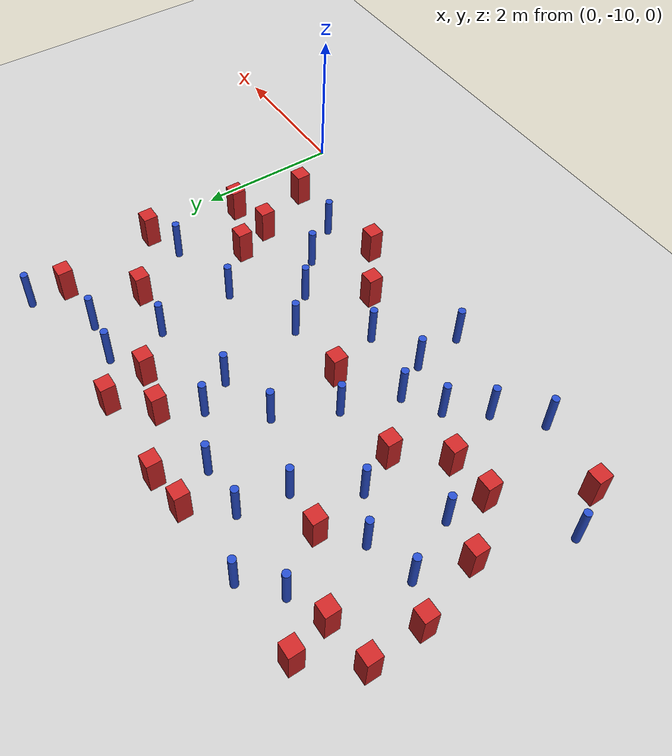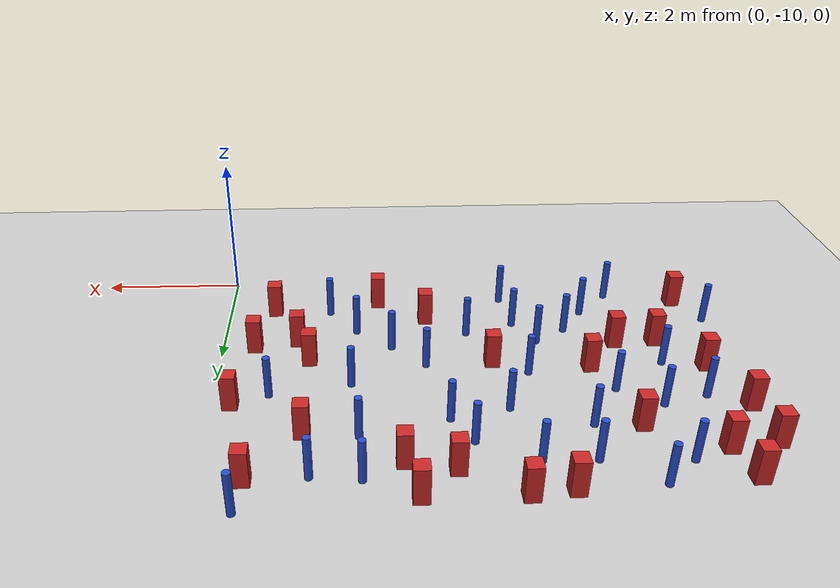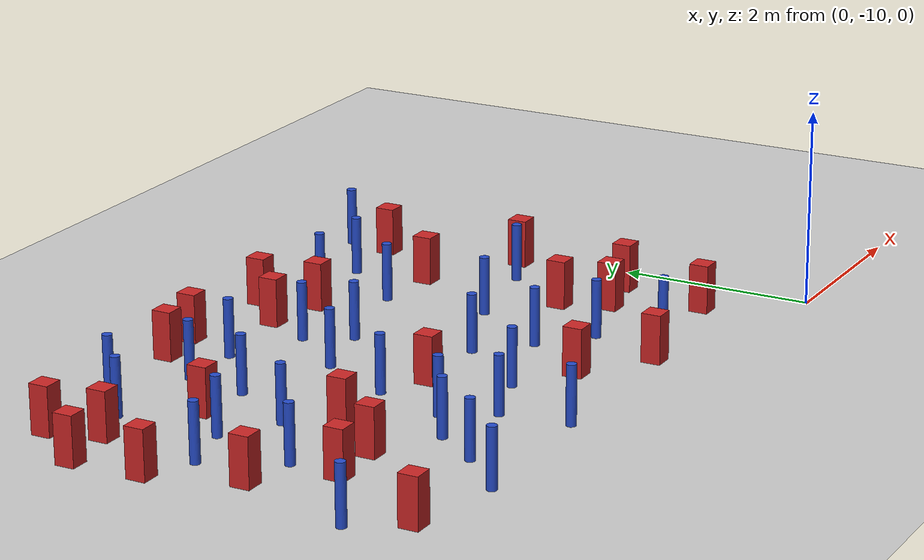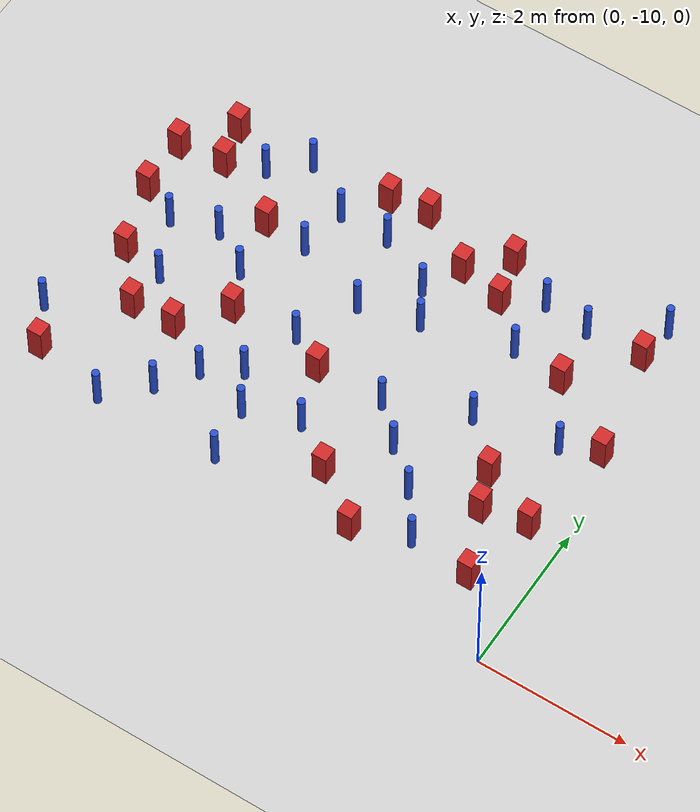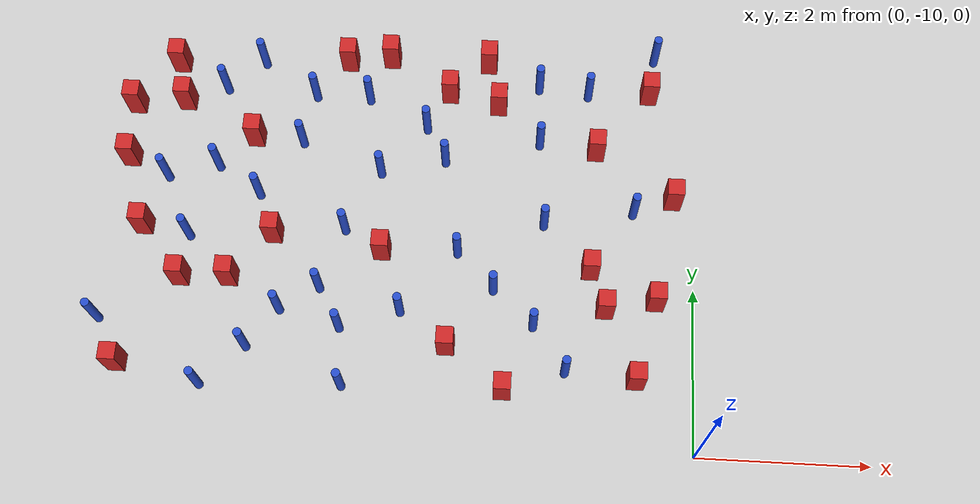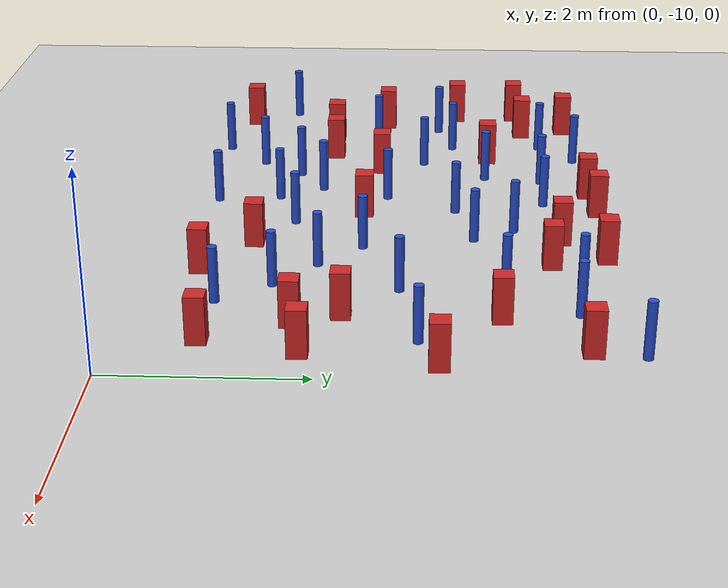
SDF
<sdf version="1.6">
 <world name="default">
  <model name="ground_plane">
   <static>1</static>
   <link name="link">
    <collision name="collision">
     <geometry><plane><normal>0 0 1</normal><size>100 100</size></plane></geometry>
     <surface><friction><ode><mu>100</mu><mu2>50</mu2></ode></friction></surface>
    </collision>
    <visual name="visual">
     <cast_shadows>0</cast_shadows>
     <geometry><plane><normal>0 0 1</normal><size>100 100</size></plane></geometry>
     <material>
      <ambient>1.0 1.0 1.0 1.0</ambient>
      <diffuse>0.8 0.8 0.8 1.0</diffuse>
      <specular>0.01 0.01 0.01 1.000000</specular>
     </material>
    </visual>
   </link>
  </model>
  <model name="square_post_obstacle3">
   <static>true</static>
   <pose>-6.44822498088 -5.28785836614 -4.36207812815e-07 3.75137919937e-06 9.77721102514e-07 2.47381364184e-05</pose>
   <link name="link">
    <pose>0 0 0.25 0 -0 0</pose>
    <inertial>
     <mass>100</mass>
     <inertia>
      <ixx>0.166667</ixx>
      <ixy>0</ixy>
      <ixz>0</ixz>
      <iyy>0.166667</iyy>
      <iyz>0</iyz>
      <izz>0.166667</izz>
     </inertia>
    </inertial>
    <collision name="collision"><geometry><box><size>.2 .2 .5</size></box></geometry></collision>
    <visual name="visual">
     <geometry><box><size>.2 .2 .5</size></box></geometry>
     <material>
      <script><name>Gazebo/Red</name><uri>file://media/materials/scripts/gazebo.material</uri></script>
     </material>
    </visual>
   </link>
  </model>
  <model name="pole_obstacle2">
   <static>true</static>
   <pose>-5.21666784153 -8.9613979253 -3.09024884793e-07 -7.19054271912e-07 -2.1131507513e-07 -1.93935509261e-07</pose>
   <link name="link">
    <pose>0 0 0.3 0 -0 0</pose>
    <inertial>
     <mass>1</mass>
     <inertia><ixx>0.145833</ixx><ixy>0</ixy><ixz>0</ixz><iyy>0.145833</iyy><iyz>0</iyz><izz>0.125</izz></inertia>
    </inertial>
    <collision name="collision">
     <geometry><cylinder><radius>0.05</radius><length>.6</length></cylinder></geometry>
    </collision>
    <visual name="visual">
     <geometry><cylinder><radius>0.05</radius><length>.6</length></cylinder></geometry>
     <material>
      <script><name>Gazebo/Blue</name><uri>file://media/materials/scripts/gazebo.material</uri></script>
     </material>
    </visual>
   </link>
  </model>
  <model name="square_post_obstacle5">
   <static>true</static>
   <pose>-2.57139538991 -5.11353573605 -4.36207812815e-07 3.75137919937e-06 9.77721102514e-07 2.47381364184e-05</pose>
   <link name="link">
    <pose>0 0 0.25 0 -0 0</pose>
    <inertial>
     <mass>100</mass>
     <inertia>
      <ixx>0.166667</ixx>
      <ixy>0</ixy>
      <ixz>0</ixz>
      <iyy>0.166667</iyy>
      <iyz>0</iyz>
      <izz>0.166667</izz>
     </inertia>
    </inertial>
    <collision name="collision"><geometry><box><size>.2 .2 .5</size></box></geometry></collision>
    <visual name="visual">
     <geometry><box><size>.2 .2 .5</size></box></geometry>
     <material>
      <script><name>Gazebo/Red</name><uri>file://media/materials/scripts/gazebo.material</uri></script>
     </material>
    </visual>
   </link>
  </model>
  <model name="pole_obstacle5">
   <static>true</static>
   <pose>-1.49414931302 -9.09169557917 -3.09024884793e-07 -7.19054271912e-07 -2.1131507515e-07 -1.93935509273e-07</pose>
   <link name="link">
    <pose>0 0 0.3 0 -0 0</pose>
    <inertial>
     <mass>1</mass>
     <inertia><ixx>0.145833</ixx><ixy>0</ixy><ixz>0</ixz><iyy>0.145833</iyy><iyz>0</iyz><izz>0.125</izz></inertia>
    </inertial>
    <collision name="collision">
     <geometry><cylinder><radius>0.05</radius><length>.6</length></cylinder></geometry>
    </collision>
    <visual name="visual">
     <geometry><cylinder><radius>0.05</radius><length>.6</length></cylinder></geometry>
     <material>
      <script><name>Gazebo/Blue</name><uri>file://media/materials/scripts/gazebo.material</uri></script>
     </material>
    </visual>
   </link>
  </model>
  <model name="square_post_obstacle24">
   <static>true</static>
   <pose>-6.68287797261 -9.22336050175 -4.36207812815e-07 3.75137919937e-06 9.77721102514e-07 2.47381364184e-05</pose>
   <link name="link">
    <pose>0 0 0.25 0 -0 0</pose>
    <inertial>
     <mass>100</mass>
     <inertia>
      <ixx>0.166667</ixx>
      <ixy>0</ixy>
      <ixz>0</ixz>
      <iyy>0.166667</iyy>
      <iyz>0</iyz>
      <izz>0.166667</izz>
     </inertia>
    </inertial>
    <collision name="collision"><geometry><box><size>.2 .2 .5</size></box></geometry></collision>
    <visual name="visual">
     <geometry><box><size>.2 .2 .5</size></box></geometry>
     <material>
      <script><name>Gazebo/Red</name><uri>file://media/materials/scripts/gazebo.material</uri></script>
     </material>
    </visual>
   </link>
  </model>
  <model name="square_post_obstacle25">
   <static>true</static>
   <pose>-0.45596552697 -8.17920783324 -4.36207812815e-07 3.75137919937e-06 9.77721102514e-07 2.47381364184e-05</pose>
   <link name="link">
    <pose>0 0 0.25 0 -0 0</pose>
    <inertial>
     <mass>100</mass>
     <inertia>
      <ixx>0.166667</ixx>
      <ixy>0</ixy>
      <ixz>0</ixz>
      <iyy>0.166667</iyy>
      <iyz>0</iyz>
      <izz>0.166667</izz>
     </inertia>
    </inertial>
    <collision name="collision"><geometry><box><size>.2 .2 .5</size></box></geometry></collision>
    <visual name="visual">
     <geometry><box><size>.2 .2 .5</size></box></geometry>
     <material>
      <script><name>Gazebo/Red</name><uri>file://media/materials/scripts/gazebo.material</uri></script>
     </material>
    </visual>
   </link>
  </model>
  <model name="pole_obstacle25">
   <static>true</static>
   <pose>-4.80439455899 -6.31971466745 -3.09024884793e-07 -7.19054271911e-07 -2.1131507516e-07 -1.93935509277e-07</pose>
   <link name="link">
    <pose>0 0 0.3 0 -0 0</pose>
    <inertial>
     <mass>1</mass>
     <inertia><ixx>0.145833</ixx><ixy>0</ixy><ixz>0</ixz><iyy>0.145833</iyy><iyz>0</iyz><izz>0.125</izz></inertia>
    </inertial>
    <collision name="collision">
     <geometry><cylinder><radius>0.05</radius><length>.6</length></cylinder></geometry>
    </collision>
    <visual name="visual">
     <geometry><cylinder><radius>0.05</radius><length>.6</length></cylinder></geometry>
     <material>
      <script><name>Gazebo/Blue</name><uri>file://media/materials/scripts/gazebo.material</uri></script>
     </material>
    </visual>
   </link>
  </model>
  <model name="pole_obstacle29">
   <static>true</static>
   <pose>-2.36857329351 -8.12577683566 -3.09024884848e-07 -7.19054271902e-07 -2.11315075199e-07 -1.93935509286e-07</pose>
   <link name="link">
    <pose>0 0 0.3 0 -0 0</pose>
    <inertial>
     <mass>1</mass>
     <inertia><ixx>0.145833</ixx><ixy>0</ixy><ixz>0</ixz><iyy>0.145833</iyy><iyz>0</iyz><izz>0.125</izz></inertia>
    </inertial>
    <collision name="collision">
     <geometry><cylinder><radius>0.05</radius><length>.6</length></cylinder></geometry>
    </collision>
    <visual name="visual">
     <geometry><cylinder><radius>0.05</radius><length>.6</length></cylinder></geometry>
     <material>
      <script><name>Gazebo/Blue</name><uri>file://media/materials/scripts/gazebo.material</uri></script>
     </material>
    </visual>
   </link>
  </model>
  <model name="square_post_obstacle37">
   <static>true</static>
   <pose>-2.20519600149 -9.33887503852 -4.36207812815e-07 3.75137919937e-06 9.77721102514e-07 2.47381364184e-05</pose>
   <link name="link">
    <pose>0 0 0.25 0 -0 0</pose>
    <inertial>
     <mass>100</mass>
     <inertia>
      <ixx>0.166667</ixx>
      <ixy>0</ixy>
      <ixz>0</ixz>
      <iyy>0.166667</iyy>
      <iyz>0</iyz>
      <izz>0.166667</izz>
     </inertia>
    </inertial>
    <collision name="collision"><geometry><box><size>.2 .2 .5</size></box></geometry></collision>
    <visual name="visual">
     <geometry><box><size>.2 .2 .5</size></box></geometry>
     <material>
      <script><name>Gazebo/Red</name><uri>file://media/materials/scripts/gazebo.material</uri></script>
     </material>
    </visual>
   </link>
  </model>
  <model name="square_post_obstacle43">
   <static>true</static>
   <pose>-0.557182635636 -5.45243389409 -4.36207812815e-07 3.75137919937e-06 9.77721102514e-07 2.47381364184e-05</pose>
   <link name="link">
    <pose>0 0 0.25 0 -0 0</pose>
    <inertial>
     <mass>100</mass>
     <inertia>
      <ixx>0.166667</ixx>
      <ixy>0</ixy>
      <ixz>0</ixz>
      <iyy>0.166667</iyy>
      <iyz>0</iyz>
      <izz>0.166667</izz>
     </inertia>
    </inertial>
    <collision name="collision"><geometry><box><size>.2 .2 .5</size></box></geometry></collision>
    <visual name="visual">
     <geometry><box><size>.2 .2 .5</size></box></geometry>
     <material>
      <script><name>Gazebo/Red</name><uri>file://media/materials/scripts/gazebo.material</uri></script>
     </material>
    </visual>
   </link>
  </model>
  <model name="square_post_obstacle45">
   <static>true</static>
   <pose>-5.39107556689 -6.27581133123 -4.36207812815e-07 3.75137919937e-06 9.77721102514e-07 2.47381364184e-05</pose>
   <link name="link">
    <pose>0 0 0.25 0 -0 0</pose>
    <inertial>
     <mass>100</mass>
     <inertia>
      <ixx>0.166667</ixx>
      <ixy>0</ixy>
      <ixz>0</ixz>
      <iyy>0.166667</iyy>
      <iyz>0</iyz>
      <izz>0.166667</izz>
     </inertia>
    </inertial>
    <collision name="collision"><geometry><box><size>.2 .2 .5</size></box></geometry></collision>
    <visual name="visual">
     <geometry><box><size>.2 .2 .5</size></box></geometry>
     <material>
      <script><name>Gazebo/Red</name><uri>file://media/materials/scripts/gazebo.material</uri></script>
     </material>
    </visual>
   </link>
  </model>
  <model name="square_post_obstacle48">
   <static>true</static>
   <pose>-1.04766358449 -8.30366901442 -4.36207812815e-07 3.75137919937e-06 9.77721102514e-07 2.47381364184e-05</pose>
   <link name="link">
    <pose>0 0 0.25 0 -0 0</pose>
    <inertial>
     <mass>100</mass>
     <inertia>
      <ixx>0.166667</ixx>
      <ixy>0</ixy>
      <ixz>0</ixz>
      <iyy>0.166667</iyy>
      <iyz>0</iyz>
      <izz>0.166667</izz>
     </inertia>
    </inertial>
    <collision name="collision"><geometry><box><size>.2 .2 .5</size></box></geometry></collision>
    <visual name="visual">
     <geometry><box><size>.2 .2 .5</size></box></geometry>
     <material>
      <script><name>Gazebo/Red</name><uri>file://media/materials/scripts/gazebo.material</uri></script>
     </material>
    </visual>
   </link>
  </model>
  <model name="square_post_obstacle61">
   <static>true</static>
   <pose>-0.256074514764 -6.87260186018 -4.36207812815e-07 3.75137919937e-06 9.77721102514e-07 2.47381364184e-05</pose>
   <link name="link">
    <pose>0 0 0.25 0 -0 0</pose>
    <inertial>
     <mass>100</mass>
     <inertia>
      <ixx>0.166667</ixx>
      <ixy>0</ixy>
      <ixz>0</ixz>
      <iyy>0.166667</iyy>
      <iyz>0</iyz>
      <izz>0.166667</izz>
     </inertia>
    </inertial>
    <collision name="collision"><geometry><box><size>.2 .2 .5</size></box></geometry></collision>
    <visual name="visual">
     <geometry><box><size>.2 .2 .5</size></box></geometry>
     <material>
      <script><name>Gazebo/Red</name><uri>file://media/materials/scripts/gazebo.material</uri></script>
     </material>
    </visual>
   </link>
  </model>
  <model name="square_post_obstacle64">
   <static>true</static>
   <pose>-6.08425042094 -8.140523649 -4.36207812815e-07 3.75137919937e-06 9.77721102514e-07 2.47381364184e-05</pose>
   <link name="link">
    <pose>0 0 0.25 0 -0 0</pose>
    <inertial>
     <mass>100</mass>
     <inertia>
      <ixx>0.166667</ixx>
      <ixy>0</ixy>
      <ixz>0</ixz>
      <iyy>0.166667</iyy>
      <iyz>0</iyz>
      <izz>0.166667</izz>
     </inertia>
    </inertial>
    <collision name="collision"><geometry><box><size>.2 .2 .5</size></box></geometry></collision>
    <visual name="visual">
     <geometry><box><size>.2 .2 .5</size></box></geometry>
     <material>
      <script><name>Gazebo/Red</name><uri>file://media/materials/scripts/gazebo.material</uri></script>
     </material>
    </visual>
   </link>
  </model>
  <model name="square_post_obstacle67">
   <static>true</static>
   <pose>-6.92382978168 -5.8930646506 -4.36207812815e-07 3.75137919937e-06 9.77721102514e-07 2.47381364184e-05</pose>
   <link name="link">
    <pose>0 0 0.25 0 -0 0</pose>
    <inertial>
     <mass>100</mass>
     <inertia>
      <ixx>0.166667</ixx>
      <ixy>0</ixy>
      <ixz>0</ixz>
      <iyy>0.166667</iyy>
      <iyz>0</iyz>
      <izz>0.166667</izz>
     </inertia>
    </inertial>
    <collision name="collision"><geometry><box><size>.2 .2 .5</size></box></geometry></collision>
    <visual name="visual">
     <geometry><box><size>.2 .2 .5</size></box></geometry>
     <material>
      <script><name>Gazebo/Red</name><uri>file://media/materials/scripts/gazebo.material</uri></script>
     </material>
    </visual>
   </link>
  </model>
  <model name="square_post_obstacle74">
   <static>true</static>
   <pose>-1.19860468981 -6.26405634627 -4.36207812815e-07 3.75137919937e-06 9.77721102514e-07 2.47381364184e-05</pose>
   <link name="link">
    <pose>0 0 0.25 0 -0 0</pose>
    <inertial>
     <mass>100</mass>
     <inertia>
      <ixx>0.166667</ixx>
      <ixy>0</ixy>
      <ixz>0</ixz>
      <iyy>0.166667</iyy>
      <iyz>0</iyz>
      <izz>0.166667</izz>
     </inertia>
    </inertial>
    <collision name="collision"><geometry><box><size>.2 .2 .5</size></box></geometry></collision>
    <visual name="visual">
     <geometry><box><size>.2 .2 .5</size></box></geometry>
     <material>
      <script><name>Gazebo/Red</name><uri>file://media/materials/scripts/gazebo.material</uri></script>
     </material>
    </visual>
   </link>
  </model>
  <model name="pole_obstacle71">
   <static>true</static>
   <pose>-3.45153604325 -8.44848197572 -3.09024884793e-07 -7.19054271912e-07 -2.11315075137e-07 -1.93935509267e-07</pose>
   <link name="link">
    <pose>0 0 0.3 0 -0 0</pose>
    <inertial>
     <mass>1</mass>
     <inertia><ixx>0.145833</ixx><ixy>0</ixy><ixz>0</ixz><iyy>0.145833</iyy><iyz>0</iyz><izz>0.125</izz></inertia>
    </inertial>
    <collision name="collision">
     <geometry><cylinder><radius>0.05</radius><length>.6</length></cylinder></geometry>
    </collision>
    <visual name="visual">
     <geometry><cylinder><radius>0.05</radius><length>.6</length></cylinder></geometry>
     <material>
      <script><name>Gazebo/Blue</name><uri>file://media/materials/scripts/gazebo.material</uri></script>
     </material>
    </visual>
   </link>
  </model>
  <model name="pole_obstacle74">
   <static>true</static>
   <pose>-1.80178495388 -7.26870234305 -3.09024884793e-07 -7.19054271912e-07 -2.11315075134e-07 -1.93935509265e-07</pose>
   <link name="link">
    <pose>0 0 0.3 0 -0 0</pose>
    <inertial>
     <mass>1</mass>
     <inertia><ixx>0.145833</ixx><ixy>0</ixy><ixz>0</ixz><iyy>0.145833</iyy><iyz>0</iyz><izz>0.125</izz></inertia>
    </inertial>
    <collision name="collision">
     <geometry><cylinder><radius>0.05</radius><length>.6</length></cylinder></geometry>
    </collision>
    <visual name="visual">
     <geometry><cylinder><radius>0.05</radius><length>.6</length></cylinder></geometry>
     <material>
      <script><name>Gazebo/Blue</name><uri>file://media/materials/scripts/gazebo.material</uri></script>
     </material>
    </visual>
   </link>
  </model>
  <model name="square_post_obstacle80">
   <static>true</static>
   <pose>-3.03110150663 -5.55354174146 -4.36207812815e-07 3.75137919937e-06 9.77721102514e-07 2.47381364184e-05</pose>
   <link name="link">
    <pose>0 0 0.25 0 -0 0</pose>
    <inertial>
     <mass>100</mass>
     <inertia>
      <ixx>0.166667</ixx>
      <ixy>0</ixy>
      <ixz>0</ixz>
      <iyy>0.166667</iyy>
      <iyz>0</iyz>
      <izz>0.166667</izz>
     </inertia>
    </inertial>
    <collision name="collision"><geometry><box><size>.2 .2 .5</size></box></geometry></collision>
    <visual name="visual">
     <geometry><box><size>.2 .2 .5</size></box></geometry>
     <material>
      <script><name>Gazebo/Red</name><uri>file://media/materials/scripts/gazebo.material</uri></script>
     </material>
    </visual>
   </link>
  </model>
  <model name="pole_obstacle91">
   <static>true</static>
   <pose>-3.81184680862 -6.68125509067 -3.09024884793e-07 -7.19054271912e-07 -2.11315075134e-07 -1.93935509266e-07</pose>
   <link name="link">
    <pose>0 0 0.3 0 -0 0</pose>
    <inertial>
     <mass>1</mass>
     <inertia><ixx>0.145833</ixx><ixy>0</ixy><ixz>0</ixz><iyy>0.145833</iyy><iyz>0</iyz><izz>0.125</izz></inertia>
    </inertial>
    <collision name="collision">
     <geometry><cylinder><radius>0.05</radius><length>.6</length></cylinder></geometry>
    </collision>
    <visual name="visual">
     <geometry><cylinder><radius>0.05</radius><length>.6</length></cylinder></geometry>
     <material>
      <script><name>Gazebo/Blue</name><uri>file://media/materials/scripts/gazebo.material</uri></script>
     </material>
    </visual>
   </link>
  </model>
  <model name="pole_obstacle92">
   <static>true</static>
   <pose>-6.0480043461 -7.61477425409 -3.09024884793e-07 -7.19054271911e-07 -2.1131507516e-07 -1.93935509277e-07</pose>
   <link name="link">
    <pose>0 0 0.3 0 -0 0</pose>
    <inertial>
     <mass>1</mass>
     <inertia><ixx>0.145833</ixx><ixy>0</ixy><ixz>0</ixz><iyy>0.145833</iyy><iyz>0</iyz><izz>0.125</izz></inertia>
    </inertial>
    <collision name="collision">
     <geometry><cylinder><radius>0.05</radius><length>.6</length></cylinder></geometry>
    </collision>
    <visual name="visual">
     <geometry><cylinder><radius>0.05</radius><length>.6</length></cylinder></geometry>
     <material>
      <script><name>Gazebo/Blue</name><uri>file://media/materials/scripts/gazebo.material</uri></script>
     </material>
    </visual>
   </link>
  </model>
  <model name="pole_obstacle100">
   <static>true</static>
   <pose>-5.26383249808 -7.04006757806 -3.09024884793e-07 -7.19054271911e-07 -2.1131507516e-07 -1.93935509277e-07</pose>
   <link name="link">
    <pose>0 0 0.3 0 -0 0</pose>
    <inertial>
     <mass>1</mass>
     <inertia><ixx>0.145833</ixx><ixy>0</ixy><ixz>0</ixz><iyy>0.145833</iyy><iyz>0</iyz><izz>0.125</izz></inertia>
    </inertial>
    <collision name="collision">
     <geometry><cylinder><radius>0.05</radius><length>.6</length></cylinder></geometry>
    </collision>
    <visual name="visual">
     <geometry><cylinder><radius>0.05</radius><length>.6</length></cylinder></geometry>
     <material>
      <script><name>Gazebo/Blue</name><uri>file://media/materials/scripts/gazebo.material</uri></script>
     </material>
    </visual>
   </link>
  </model>
  <model name="square_post_obstacle88">
   <static>true</static>
   <pose>-2.88540191657 -8.84044474367 -4.36207812815e-07 3.75137919937e-06 9.77721102514e-07 2.47381364184e-05</pose>
   <link name="link">
    <pose>0 0 0.25 0 -0 0</pose>
    <inertial>
     <mass>100</mass>
     <inertia>
      <ixx>0.166667</ixx>
      <ixy>0</ixy>
      <ixz>0</ixz>
      <iyy>0.166667</iyy>
      <iyz>0</iyz>
      <izz>0.166667</izz>
     </inertia>
    </inertial>
    <collision name="collision"><geometry><box><size>.2 .2 .5</size></box></geometry></collision>
    <visual name="visual">
     <geometry><box><size>.2 .2 .5</size></box></geometry>
     <material>
      <script><name>Gazebo/Red</name><uri>file://media/materials/scripts/gazebo.material</uri></script>
     </material>
    </visual>
   </link>
  </model>
  <model name="square_post_obstacle90">
   <static>true</static>
   <pose>-3.79664594752 -5.09737108588 -4.36207812815e-07 3.75137919937e-06 9.77721102514e-07 2.47381364184e-05</pose>
   <link name="link">
    <pose>0 0 0.25 0 -0 0</pose>
    <inertial>
     <mass>100</mass>
     <inertia>
      <ixx>0.166667</ixx>
      <ixy>0</ixy>
      <ixz>0</ixz>
      <iyy>0.166667</iyy>
      <iyz>0</iyz>
      <izz>0.166667</izz>
     </inertia>
    </inertial>
    <collision name="collision"><geometry><box><size>.2 .2 .5</size></box></geometry></collision>
    <visual name="visual">
     <geometry><box><size>.2 .2 .5</size></box></geometry>
     <material>
      <script><name>Gazebo/Red</name><uri>file://media/materials/scripts/gazebo.material</uri></script>
     </material>
    </visual>
   </link>
  </model>
  <model name="pole_obstacle111">
   <static>true</static>
   <pose>-1.92591221895 -5.42639408808 -3.09024884793e-07 -7.19054271912e-07 -2.11315075134e-07 -1.93935509265e-07</pose>
   <link name="link">
    <pose>0 0 0.3 0 -0 0</pose>
    <inertial>
     <mass>1</mass>
     <inertia><ixx>0.145833</ixx><ixy>0</ixy><ixz>0</ixz><iyy>0.145833</iyy><iyz>0</iyz><izz>0.125</izz></inertia>
    </inertial>
    <collision name="collision">
     <geometry><cylinder><radius>0.05</radius><length>.6</length></cylinder></geometry>
    </collision>
    <visual name="visual">
     <geometry><cylinder><radius>0.05</radius><length>.6</length></cylinder></geometry>
     <material>
      <script><name>Gazebo/Blue</name><uri>file://media/materials/scripts/gazebo.material</uri></script>
     </material>
    </visual>
   </link>
  </model>
  <model name="pole_obstacle115">
   <static>true</static>
   <pose>-0.729209389092 -7.06947692747 -3.09024884793e-07 -7.19054271912e-07 -2.11315075129e-07 -1.93935509261e-07</pose>
   <link name="link">
    <pose>0 0 0.3 0 -0 0</pose>
    <inertial>
     <mass>1</mass>
     <inertia><ixx>0.145833</ixx><ixy>0</ixy><ixz>0</ixz><iyy>0.145833</iyy><iyz>0</iyz><izz>0.125</izz></inertia>
    </inertial>
    <collision name="collision">
     <geometry><cylinder><radius>0.05</radius><length>.6</length></cylinder></geometry>
    </collision>
    <visual name="visual">
     <geometry><cylinder><radius>0.05</radius><length>.6</length></cylinder></geometry>
     <material>
      <script><name>Gazebo/Blue</name><uri>file://media/materials/scripts/gazebo.material</uri></script>
     </material>
    </visual>
   </link>
  </model>
  <model name="pole_obstacle118">
   <static>true</static>
   <pose>-5.39325669834 -5.23430344378 -3.09024884793e-07 -7.19054271911e-07 -2.1131507516e-07 -1.93935509277e-07</pose>
   <link name="link">
    <pose>0 0 0.3 0 -0 0</pose>
    <inertial>
     <mass>1</mass>
     <inertia><ixx>0.145833</ixx><ixy>0</ixy><ixz>0</ixz><iyy>0.145833</iyy><iyz>0</iyz><izz>0.125</izz></inertia>
    </inertial>
    <collision name="collision">
     <geometry><cylinder><radius>0.05</radius><length>.6</length></cylinder></geometry>
    </collision>
    <visual name="visual">
     <geometry><cylinder><radius>0.05</radius><length>.6</length></cylinder></geometry>
     <material>
      <script><name>Gazebo/Blue</name><uri>file://media/materials/scripts/gazebo.material</uri></script>
     </material>
    </visual>
   </link>
  </model>
  <model name="square_post_obstacle110">
   <static>true</static>
   <pose>-5.50856149453 -8.11658255986 -4.36207812815e-07 3.75137919937e-06 9.77721102514e-07 2.47381364184e-05</pose>
   <link name="link">
    <pose>0 0 0.25 0 -0 0</pose>
    <inertial>
     <mass>100</mass>
     <inertia>
      <ixx>0.166667</ixx>
      <ixy>0</ixy>
      <ixz>0</ixz>
      <iyy>0.166667</iyy>
      <iyz>0</iyz>
      <izz>0.166667</izz>
     </inertia>
    </inertial>
    <collision name="collision"><geometry><box><size>.2 .2 .5</size></box></geometry></collision>
    <visual name="visual">
     <geometry><box><size>.2 .2 .5</size></box></geometry>
     <material>
      <script><name>Gazebo/Red</name><uri>file://media/materials/scripts/gazebo.material</uri></script>
     </material>
    </visual>
   </link>
  </model>
  <model name="pole_obstacle121">
   <static>true</static>
   <pose>-1.88258505335 -8.55443622423 -3.09024884793e-07 -7.19054271912e-07 -2.1131507515e-07 -1.93935509273e-07</pose>
   <link name="link">
    <pose>0 0 0.3 0 -0 0</pose>
    <inertial>
     <mass>1</mass>
     <inertia><ixx>0.145833</ixx><ixy>0</ixy><ixz>0</ixz><iyy>0.145833</iyy><iyz>0</iyz><izz>0.125</izz></inertia>
    </inertial>
    <collision name="collision">
     <geometry><cylinder><radius>0.05</radius><length>.6</length></cylinder></geometry>
    </collision>
    <visual name="visual">
     <geometry><cylinder><radius>0.05</radius><length>.6</length></cylinder></geometry>
     <material>
      <script><name>Gazebo/Blue</name><uri>file://media/materials/scripts/gazebo.material</uri></script>
     </material>
    </visual>
   </link>
  </model>
  <model name="pole_obstacle122">
   <static>true</static>
   <pose>-6.40777048619 -6.85833906845 -3.09024884793e-07 -7.19054271911e-07 -2.1131507516e-07 -1.93935509277e-07</pose>
   <link name="link">
    <pose>0 0 0.3 0 -0 0</pose>
    <inertial>
     <mass>1</mass>
     <inertia><ixx>0.145833</ixx><ixy>0</ixy><ixz>0</ixz><iyy>0.145833</iyy><iyz>0</iyz><izz>0.125</izz></inertia>
    </inertial>
    <collision name="collision">
     <geometry><cylinder><radius>0.05</radius><length>.6</length></cylinder></geometry>
    </collision>
    <visual name="visual">
     <geometry><cylinder><radius>0.05</radius><length>.6</length></cylinder></geometry>
     <material>
      <script><name>Gazebo/Blue</name><uri>file://media/materials/scripts/gazebo.material</uri></script>
     </material>
    </visual>
   </link>
  </model>
  <model name="pole_obstacle126">
   <static>true</static>
   <pose>-6.98878541036 -8.70075420594 -3.09024884793e-07 -7.19054271912e-07 -2.1131507513e-07 -1.93935509261e-07</pose>
   <link name="link">
    <pose>0 0 0.3 0 -0 0</pose>
    <inertial>
     <mass>1</mass>
     <inertia><ixx>0.145833</ixx><ixy>0</ixy><ixz>0</ixz><iyy>0.145833</iyy><iyz>0</iyz><izz>0.125</izz></inertia>
    </inertial>
    <collision name="collision">
     <geometry><cylinder><radius>0.05</radius><length>.6</length></cylinder></geometry>
    </collision>
    <visual name="visual">
     <geometry><cylinder><radius>0.05</radius><length>.6</length></cylinder></geometry>
     <material>
      <script><name>Gazebo/Blue</name><uri>file://media/materials/scripts/gazebo.material</uri></script>
     </material>
    </visual>
   </link>
  </model>
  <model name="pole_obstacle134">
   <static>true</static>
   <pose>-0.492966175856 -4.956145106 -3.09024884793e-07 -7.19054271912e-07 -2.11315075131e-07 -1.93935509262e-07</pose>
   <link name="link">
    <pose>0 0 0.3 0 -0 0</pose>
    <inertial>
     <mass>1</mass>
     <inertia><ixx>0.145833</ixx><ixy>0</ixy><ixz>0</ixz><iyy>0.145833</iyy><iyz>0</iyz><izz>0.125</izz></inertia>
    </inertial>
    <collision name="collision">
     <geometry><cylinder><radius>0.05</radius><length>.6</length></cylinder></geometry>
    </collision>
    <visual name="visual">
     <geometry><cylinder><radius>0.05</radius><length>.6</length></cylinder></geometry>
     <material>
      <script><name>Gazebo/Blue</name><uri>file://media/materials/scripts/gazebo.material</uri></script>
     </material>
    </visual>
   </link>
  </model>
  <model name="pole_obstacle144">
   <static>true</static>
   <pose>-4.70306214933 -5.67066309954 -3.09024884793e-07 -7.19054271911e-07 -2.1131507516e-07 -1.93935509277e-07</pose>
   <link name="link">
    <pose>0 0 0.3 0 -0 0</pose>
    <inertial>
     <mass>1</mass>
     <inertia><ixx>0.145833</ixx><ixy>0</ixy><ixz>0</ixz><iyy>0.145833</iyy><iyz>0</iyz><izz>0.125</izz></inertia>
    </inertial>
    <collision name="collision">
     <geometry><cylinder><radius>0.05</radius><length>.6</length></cylinder></geometry>
    </collision>
    <visual name="visual">
     <geometry><cylinder><radius>0.05</radius><length>.6</length></cylinder></geometry>
     <material>
      <script><name>Gazebo/Blue</name><uri>file://media/materials/scripts/gazebo.material</uri></script>
     </material>
    </visual>
   </link>
  </model>
  <model name="pole_obstacle153">
   <static>true</static>
   <pose>-4.18389176941 -7.45015145492 -3.09024884793e-07 -7.19054271911e-07 -2.1131507516e-07 -1.93935509277e-07</pose>
   <link name="link">
    <pose>0 0 0.3 0 -0 0</pose>
    <inertial>
     <mass>1</mass>
     <inertia><ixx>0.145833</ixx><ixy>0</ixy><ixz>0</ixz><iyy>0.145833</iyy><iyz>0</iyz><izz>0.125</izz></inertia>
    </inertial>
    <collision name="collision">
     <geometry><cylinder><radius>0.05</radius><length>.6</length></cylinder></geometry>
    </collision>
    <visual name="visual">
     <geometry><cylinder><radius>0.05</radius><length>.6</length></cylinder></geometry>
     <material>
      <script><name>Gazebo/Blue</name><uri>file://media/materials/scripts/gazebo.material</uri></script>
     </material>
    </visual>
   </link>
  </model>
  <model name="pole_obstacle155">
   <static>true</static>
   <pose>-3.29041360615 -6.05147654301 -3.09024884793e-07 -7.19054271912e-07 -2.11315075134e-07 -1.93935509266e-07</pose>
   <link name="link">
    <pose>0 0 0.3 0 -0 0</pose>
    <inertial>
     <mass>1</mass>
     <inertia><ixx>0.145833</ixx><ixy>0</ixy><ixz>0</ixz><iyy>0.145833</iyy><iyz>0</iyz><izz>0.125</izz></inertia>
    </inertial>
    <collision name="collision">
     <geometry><cylinder><radius>0.05</radius><length>.6</length></cylinder></geometry>
    </collision>
    <visual name="visual">
     <geometry><cylinder><radius>0.05</radius><length>.6</length></cylinder></geometry>
     <material>
      <script><name>Gazebo/Blue</name><uri>file://media/materials/scripts/gazebo.material</uri></script>
     </material>
    </visual>
   </link>
  </model>
  <model name="square_post_obstacle145">
   <static>true</static>
   <pose>-6.6075449282 -7.5094111776 -4.36207812815e-07 3.75137919937e-06 9.77721102514e-07 2.47381364184e-05</pose>
   <link name="link">
    <pose>0 0 0.25 0 -0 0</pose>
    <inertial>
     <mass>100</mass>
     <inertia>
      <ixx>0.166667</ixx>
      <ixy>0</ixy>
      <ixz>0</ixz>
      <iyy>0.166667</iyy>
      <iyz>0</iyz>
      <izz>0.166667</izz>
     </inertia>
    </inertial>
    <collision name="collision"><geometry><box><size>.2 .2 .5</size></box></geometry></collision>
    <visual name="visual">
     <geometry><box><size>.2 .2 .5</size></box></geometry>
     <material>
      <script><name>Gazebo/Red</name><uri>file://media/materials/scripts/gazebo.material</uri></script>
     </material>
    </visual>
   </link>
  </model>
  <model name="square_post_obstacle153">
   <static>true</static>
   <pose>-0.678483684911 -9.1439798905 -4.36207812815e-07 3.75137919937e-06 9.77721102514e-07 2.47381364184e-05</pose>
   <link name="link">
    <pose>0 0 0.25 0 -0 0</pose>
    <inertial>
     <mass>100</mass>
     <inertia>
      <ixx>0.166667</ixx>
      <ixy>0</ixy>
      <ixz>0</ixz>
      <iyy>0.166667</iyy>
      <iyz>0</iyz>
      <izz>0.166667</izz>
     </inertia>
    </inertial>
    <collision name="collision"><geometry><box><size>.2 .2 .5</size></box></geometry></collision>
    <visual name="visual">
     <geometry><box><size>.2 .2 .5</size></box></geometry>
     <material>
      <script><name>Gazebo/Red</name><uri>file://media/materials/scripts/gazebo.material</uri></script>
     </material>
    </visual>
   </link>
  </model>
  <model name="pole_obstacle163">
   <static>true</static>
   <pose>-5.70218909192 -9.43975094284 -3.09024884793e-07 -7.19054271912e-07 -2.1131507513e-07 -1.93935509261e-07</pose>
   <link name="link">
    <pose>0 0 0.3 0 -0 0</pose>
    <inertial>
     <mass>1</mass>
     <inertia><ixx>0.145833</ixx><ixy>0</ixy><ixz>0</ixz><iyy>0.145833</iyy><iyz>0</iyz><izz>0.125</izz></inertia>
    </inertial>
    <collision name="collision">
     <geometry><cylinder><radius>0.05</radius><length>.6</length></cylinder></geometry>
    </collision>
    <visual name="visual">
     <geometry><cylinder><radius>0.05</radius><length>.6</length></cylinder></geometry>
     <material>
      <script><name>Gazebo/Blue</name><uri>file://media/materials/scripts/gazebo.material</uri></script>
     </material>
    </visual>
   </link>
  </model>
  <model name="pole_obstacle164">
   <static>true</static>
   <pose>-4.14892284797 -8.68096766625 -3.09024884793e-07 -7.19054271912e-07 -2.1131507513e-07 -1.93935509261e-07</pose>
   <link name="link">
    <pose>0 0 0.3 0 -0 0</pose>
    <inertial>
     <mass>1</mass>
     <inertia><ixx>0.145833</ixx><ixy>0</ixy><ixz>0</ixz><iyy>0.145833</iyy><iyz>0</iyz><izz>0.125</izz></inertia>
    </inertial>
    <collision name="collision">
     <geometry><cylinder><radius>0.05</radius><length>.6</length></cylinder></geometry>
    </collision>
    <visual name="visual">
     <geometry><cylinder><radius>0.05</radius><length>.6</length></cylinder></geometry>
     <material>
      <script><name>Gazebo/Blue</name><uri>file://media/materials/scripts/gazebo.material</uri></script>
     </material>
    </visual>
   </link>
  </model>
  <model name="square_post_obstacle159">
   <static>true</static>
   <pose>-4.3236665987 -5.16654632216 -4.36207812815e-07 3.75137919937e-06 9.77721102514e-07 2.47381364184e-05</pose>
   <link name="link">
    <pose>0 0 0.25 0 -0 0</pose>
    <inertial>
     <mass>100</mass>
     <inertia>
      <ixx>0.166667</ixx>
      <ixy>0</ixy>
      <ixz>0</ixz>
      <iyy>0.166667</iyy>
      <iyz>0</iyz>
      <izz>0.166667</izz>
     </inertia>
    </inertial>
    <collision name="collision"><geometry><box><size>.2 .2 .5</size></box></geometry></collision>
    <visual name="visual">
     <geometry><box><size>.2 .2 .5</size></box></geometry>
     <material>
      <script><name>Gazebo/Red</name><uri>file://media/materials/scripts/gazebo.material</uri></script>
     </material>
    </visual>
   </link>
  </model>
  <model name="pole_obstacle170">
   <static>true</static>
   <pose>-4.42521455448 -8.2021880485 -3.09024884793e-07 -7.19054271912e-07 -2.1131507513e-07 -1.93935509261e-07</pose>
   <link name="link">
    <pose>0 0 0.3 0 -0 0</pose>
    <inertial>
     <mass>1</mass>
     <inertia><ixx>0.145833</ixx><ixy>0</ixy><ixz>0</ixz><iyy>0.145833</iyy><iyz>0</iyz><izz>0.125</izz></inertia>
    </inertial>
    <collision name="collision">
     <geometry><cylinder><radius>0.05</radius><length>.6</length></cylinder></geometry>
    </collision>
    <visual name="visual">
     <geometry><cylinder><radius>0.05</radius><length>.6</length></cylinder></geometry>
     <material>
      <script><name>Gazebo/Blue</name><uri>file://media/materials/scripts/gazebo.material</uri></script>
     </material>
    </visual>
   </link>
  </model>
  <model name="square_post_obstacle163">
   <static>true</static>
   <pose>-1.23162745995 -7.82334275547 -4.36207812815e-07 3.75137919937e-06 9.77721102514e-07 2.47381364184e-05</pose>
   <link name="link">
    <pose>0 0 0.25 0 -0 0</pose>
    <inertial>
     <mass>100</mass>
     <inertia>
      <ixx>0.166667</ixx>
      <ixy>0</ixy>
      <ixz>0</ixz>
      <iyy>0.166667</iyy>
      <iyz>0</iyz>
      <izz>0.166667</izz>
     </inertia>
    </inertial>
    <collision name="collision"><geometry><box><size>.2 .2 .5</size></box></geometry></collision>
    <visual name="visual">
     <geometry><box><size>.2 .2 .5</size></box></geometry>
     <material>
      <script><name>Gazebo/Red</name><uri>file://media/materials/scripts/gazebo.material</uri></script>
     </material>
    </visual>
   </link>
  </model>
  <model name="pole_obstacle177">
   <static>true</static>
   <pose>-4.06268054789 -9.37766848322 -3.09024884793e-07 -7.19054271912e-07 -2.1131507513e-07 -1.93935509261e-07</pose>
   <link name="link">
    <pose>0 0 0.3 0 -0 0</pose>
    <inertial>
     <mass>1</mass>
     <inertia><ixx>0.145833</ixx><ixy>0</ixy><ixz>0</ixz><iyy>0.145833</iyy><iyz>0</iyz><izz>0.125</izz></inertia>
    </inertial>
    <collision name="collision">
     <geometry><cylinder><radius>0.05</radius><length>.6</length></cylinder></geometry>
    </collision>
    <visual name="visual">
     <geometry><cylinder><radius>0.05</radius><length>.6</length></cylinder></geometry>
     <material>
      <script><name>Gazebo/Blue</name><uri>file://media/materials/scripts/gazebo.material</uri></script>
     </material>
    </visual>
   </link>
  </model>
  <model name="square_post_obstacle166">
   <static>true</static>
   <pose>-6.30825084027 -5.81555723704 -4.36207812815e-07 3.75137919937e-06 9.77721102514e-07 2.47381364184e-05</pose>
   <link name="link">
    <pose>0 0 0.25 0 -0 0</pose>
    <inertial>
     <mass>100</mass>
     <inertia>
      <ixx>0.166667</ixx>
      <ixy>0</ixy>
      <ixz>0</ixz>
      <iyy>0.166667</iyy>
      <iyz>0</iyz>
      <izz>0.166667</izz>
     </inertia>
    </inertial>
    <collision name="collision"><geometry><box><size>.2 .2 .5</size></box></geometry></collision>
    <visual name="visual">
     <geometry><box><size>.2 .2 .5</size></box></geometry>
     <material>
      <script><name>Gazebo/Red</name><uri>file://media/materials/scripts/gazebo.material</uri></script>
     </material>
    </visual>
   </link>
  </model>
  <model name="square_post_obstacle168">
   <static>true</static>
   <pose>-5.03534846982 -7.54391897708 -4.36207812815e-07 3.75137919937e-06 9.77721102514e-07 2.47381364184e-05</pose>
   <link name="link">
    <pose>0 0 0.25 0 -0 0</pose>
    <inertial>
     <mass>100</mass>
     <inertia>
      <ixx>0.166667</ixx>
      <ixy>0</ixy>
      <ixz>0</ixz>
      <iyy>0.166667</iyy>
      <iyz>0</iyz>
      <izz>0.166667</izz>
     </inertia>
    </inertial>
    <collision name="collision"><geometry><box><size>.2 .2 .5</size></box></geometry></collision>
    <visual name="visual">
     <geometry><box><size>.2 .2 .5</size></box></geometry>
     <material>
      <script><name>Gazebo/Red</name><uri>file://media/materials/scripts/gazebo.material</uri></script>
     </material>
    </visual>
   </link>
  </model>
  <model name="square_post_obstacle169">
   <static>true</static>
   <pose>-2.42056222556 -5.69694595099 -4.36207812815e-07 3.75137919937e-06 9.77721102514e-07 2.47381364184e-05</pose>
   <link name="link">
    <pose>0 0 0.25 0 -0 0</pose>
    <inertial>
     <mass>100</mass>
     <inertia>
      <ixx>0.166667</ixx>
      <ixy>0</ixy>
      <ixz>0</ixz>
      <iyy>0.166667</iyy>
      <iyz>0</iyz>
      <izz>0.166667</izz>
     </inertia>
    </inertial>
    <collision name="collision"><geometry><box><size>.2 .2 .5</size></box></geometry></collision>
    <visual name="visual">
     <geometry><box><size>.2 .2 .5</size></box></geometry>
     <material>
      <script><name>Gazebo/Red</name><uri>file://media/materials/scripts/gazebo.material</uri></script>
     </material>
    </visual>
   </link>
  </model>
  <model name="pole_obstacle181">
   <static>true</static>
   <pose>-3.03734628115 -6.49070319593 -3.09024884793e-07 -7.19054271912e-07 -2.11315075134e-07 -1.93935509266e-07</pose>
   <link name="link">
    <pose>0 0 0.3 0 -0 0</pose>
    <inertial>
     <mass>1</mass>
     <inertia><ixx>0.145833</ixx><ixy>0</ixy><ixz>0</ixz><iyy>0.145833</iyy><iyz>0</iyz><izz>0.125</izz></inertia>
    </inertial>
    <collision name="collision">
     <geometry><cylinder><radius>0.05</radius><length>.6</length></cylinder></geometry>
    </collision>
    <visual name="visual">
     <geometry><cylinder><radius>0.05</radius><length>.6</length></cylinder></geometry>
     <material>
      <script><name>Gazebo/Blue</name><uri>file://media/materials/scripts/gazebo.material</uri></script>
     </material>
    </visual>
   </link>
  </model>
  <model name="pole_obstacle188">
   <static>true</static>
   <pose>-1.89123797365 -6.19756843934 -3.09024884793e-07 -7.19054271912e-07 -2.11315075134e-07 -1.93935509265e-07</pose>
   <link name="link">
    <pose>0 0 0.3 0 -0 0</pose>
    <inertial>
     <mass>1</mass>
     <inertia><ixx>0.145833</ixx><ixy>0</ixy><ixz>0</ixz><iyy>0.145833</iyy><iyz>0</iyz><izz>0.125</izz></inertia>
    </inertial>
    <collision name="collision">
     <geometry><cylinder><radius>0.05</radius><length>.6</length></cylinder></geometry>
    </collision>
    <visual name="visual">
     <geometry><cylinder><radius>0.05</radius><length>.6</length></cylinder></geometry>
     <material>
      <script><name>Gazebo/Blue</name><uri>file://media/materials/scripts/gazebo.material</uri></script>
     </material>
    </visual>
   </link>
  </model>
  <model name="pole_obstacle190">
   <static>true</static>
   <pose>-5.79982235149 -6.69112341727 -3.09024884793e-07 -7.19054271911e-07 -2.1131507516e-07 -1.93935509277e-07</pose>
   <link name="link">
    <pose>0 0 0.3 0 -0 0</pose>
    <inertial>
     <mass>1</mass>
     <inertia><ixx>0.145833</ixx><ixy>0</ixy><ixz>0</ixz><iyy>0.145833</iyy><iyz>0</iyz><izz>0.125</izz></inertia>
    </inertial>
    <collision name="collision">
     <geometry><cylinder><radius>0.05</radius><length>.6</length></cylinder></geometry>
    </collision>
    <visual name="visual">
     <geometry><cylinder><radius>0.05</radius><length>.6</length></cylinder></geometry>
     <material>
      <script><name>Gazebo/Blue</name><uri>file://media/materials/scripts/gazebo.material</uri></script>
     </material>
    </visual>
   </link>
  </model>
  <model name="square_post_obstacle186">
   <static>true</static>
   <pose>-3.72099331242 -7.69856519624 -4.36207812815e-07 3.75137919937e-06 9.77721102514e-07 2.47381364184e-05</pose>
   <link name="link">
    <pose>0 0 0.25 0 -0 0</pose>
    <inertial>
     <mass>100</mass>
     <inertia>
      <ixx>0.166667</ixx>
      <ixy>0</ixy>
      <ixz>0</ixz>
      <iyy>0.166667</iyy>
      <iyz>0</iyz>
      <izz>0.166667</izz>
     </inertia>
    </inertial>
    <collision name="collision"><geometry><box><size>.2 .2 .5</size></box></geometry></collision>
    <visual name="visual">
     <geometry><box><size>.2 .2 .5</size></box></geometry>
     <material>
      <script><name>Gazebo/Red</name><uri>file://media/materials/scripts/gazebo.material</uri></script>
     </material>
    </visual>
   </link>
  </model>
  <model name="square_post_obstacle200">
   <static>true</static>
   <pose>-6.88927107514 -6.62067498135 -4.36207812815e-07 3.75137919937e-06 9.77721102514e-07 2.47381364184e-05</pose>
   <link name="link">
    <pose>0 0 0.25 0 -0 0</pose>
    <inertial>
     <mass>100</mass>
     <inertia>
      <ixx>0.166667</ixx>
      <ixy>0</ixy>
      <ixz>0</ixz>
      <iyy>0.166667</iyy>
      <iyz>0</iyz>
      <izz>0.166667</izz>
     </inertia>
    </inertial>
    <collision name="collision"><geometry><box><size>.2 .2 .5</size></box></geometry></collision>
    <visual name="visual">
     <geometry><box><size>.2 .2 .5</size></box></geometry>
     <material>
      <script><name>Gazebo/Red</name><uri>file://media/materials/scripts/gazebo.material</uri></script>
     </material>
    </visual>
   </link>
  </model>
  <model name="pole_obstacle212">
   <static>true</static>
   <pose>-4.87320174227 -8.49267411374 -3.09024884793e-07 -7.19054271912e-07 -2.1131507513e-07 -1.93935509261e-07</pose>
   <link name="link">
    <pose>0 0 0.3 0 -0 0</pose>
    <inertial>
     <mass>1</mass>
     <inertia><ixx>0.145833</ixx><ixy>0</ixy><ixz>0</ixz><iyy>0.145833</iyy><iyz>0</iyz><izz>0.125</izz></inertia>
    </inertial>
    <collision name="collision">
     <geometry><cylinder><radius>0.05</radius><length>.6</length></cylinder></geometry>
    </collision>
    <visual name="visual">
     <geometry><cylinder><radius>0.05</radius><length>.6</length></cylinder></geometry>
     <material>
      <script><name>Gazebo/Blue</name><uri>file://media/materials/scripts/gazebo.material</uri></script>
     </material>
    </visual>
   </link>
  </model>
  <model name="pole_obstacle220">
   <static>true</static>
   <pose>-2.81804355176 -7.67896103897 -3.09024884793e-07 -7.19054271912e-07 -2.11315075134e-07 -1.93935509266e-07</pose>
   <link name="link">
    <pose>0 0 0.3 0 -0 0</pose>
    <inertial>
     <mass>1</mass>
     <inertia><ixx>0.145833</ixx><ixy>0</ixy><ixz>0</ixz><iyy>0.145833</iyy><iyz>0</iyz><izz>0.125</izz></inertia>
    </inertial>
    <collision name="collision">
     <geometry><cylinder><radius>0.05</radius><length>.6</length></cylinder></geometry>
    </collision>
    <visual name="visual">
     <geometry><cylinder><radius>0.05</radius><length>.6</length></cylinder></geometry>
     <material>
      <script><name>Gazebo/Blue</name><uri>file://media/materials/scripts/gazebo.material</uri></script>
     </material>
    </visual>
   </link>
  </model>
  <model name="pole_obstacle225">
   <static>true</static>
   <pose>-4.03155999024 -5.68136997922 -3.09024884793e-07 -7.19054271911e-07 -2.11315075165e-07 -1.9393550928e-07</pose>
   <link name="link">
    <pose>0 0 0.3 0 -0 0</pose>
    <inertial>
     <mass>1</mass>
     <inertia><ixx>0.145833</ixx><ixy>0</ixy><ixz>0</ixz><iyy>0.145833</iyy><iyz>0</iyz><izz>0.125</izz></inertia>
    </inertial>
    <collision name="collision">
     <geometry><cylinder><radius>0.05</radius><length>.6</length></cylinder></geometry>
    </collision>
    <visual name="visual">
     <geometry><cylinder><radius>0.05</radius><length>.6</length></cylinder></geometry>
     <material>
      <script><name>Gazebo/Blue</name><uri>file://media/materials/scripts/gazebo.material</uri></script>
     </material>
    </visual>
   </link>
  </model>
  <model name="pole_obstacle228">
   <static>true</static>
   <pose>-5.82807999024 -5.62386997922 -3.09024884793e-07 -7.19054271911e-07 -2.1131507516e-07 -1.93935509277e-07</pose>
   <link name="link">
    <pose>0 0 0.3 0 -0 0</pose>
    <inertial>
     <mass>1</mass>
     <inertia><ixx>0.145833</ixx><ixy>0</ixy><ixz>0</ixz><iyy>0.145833</iyy><iyz>0</iyz><izz>0.125</izz></inertia>
    </inertial>
    <collision name="collision">
     <geometry><cylinder><radius>0.05</radius><length>.6</length></cylinder></geometry>
    </collision>
    <visual name="visual">
     <geometry><cylinder><radius>0.05</radius><length>.6</length></cylinder></geometry>
     <material>
      <script><name>Gazebo/Blue</name><uri>file://media/materials/scripts/gazebo.material</uri></script>
     </material>
    </visual>
   </link>
  </model>
  <model name="pole_obstacle229">
   <static>true</static>
   <pose>-1.31145999024 -5.49560997922 -3.09024884793e-07 -7.19054271912e-07 -2.11315075132e-07 -1.93935509264e-07</pose>
   <link name="link">
    <pose>0 0 0.3 0 -0 0</pose>
    <inertial>
     <mass>1</mass>
     <inertia><ixx>0.145833</ixx><ixy>0</ixy><ixz>0</ixz><iyy>0.145833</iyy><iyz>0</iyz><izz>0.125</izz></inertia>
    </inertial>
    <collision name="collision">
     <geometry><cylinder><radius>0.05</radius><length>.6</length></cylinder></geometry>
    </collision>
    <visual name="visual">
     <geometry><cylinder><radius>0.05</radius><length>.6</length></cylinder></geometry>
     <material>
      <script><name>Gazebo/Blue</name><uri>file://media/materials/scripts/gazebo.material</uri></script>
     </material>
    </visual>
   </link>
  </model>
 </world>
</sdf>
